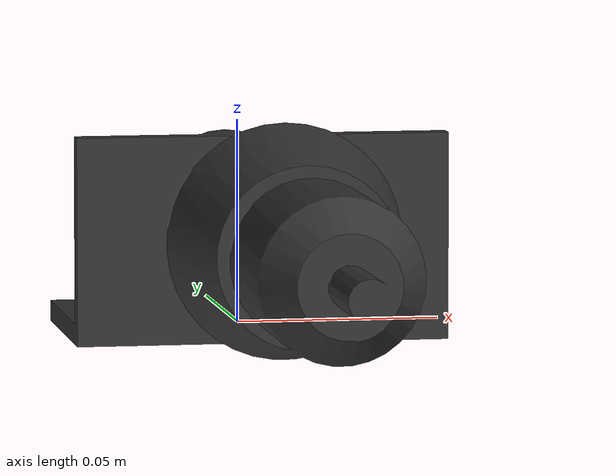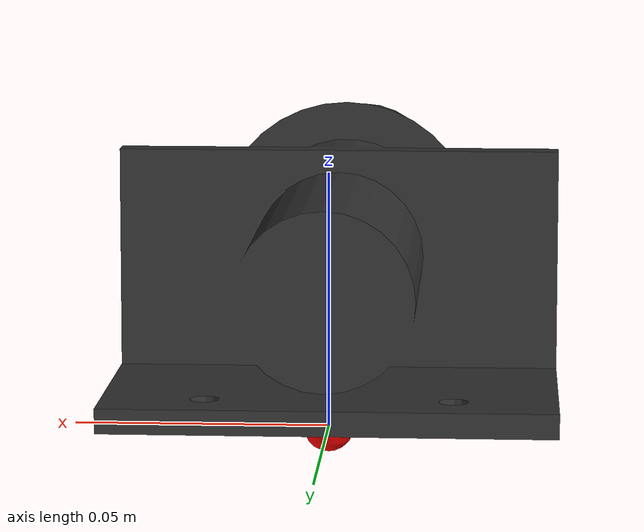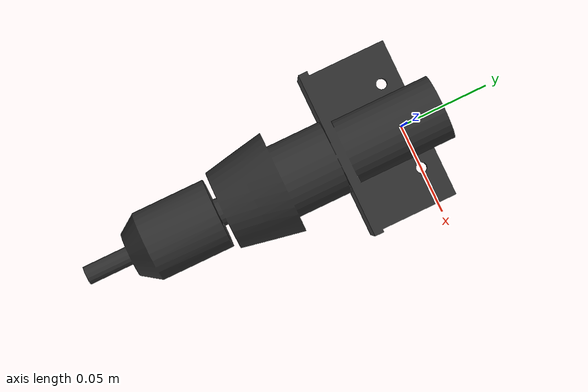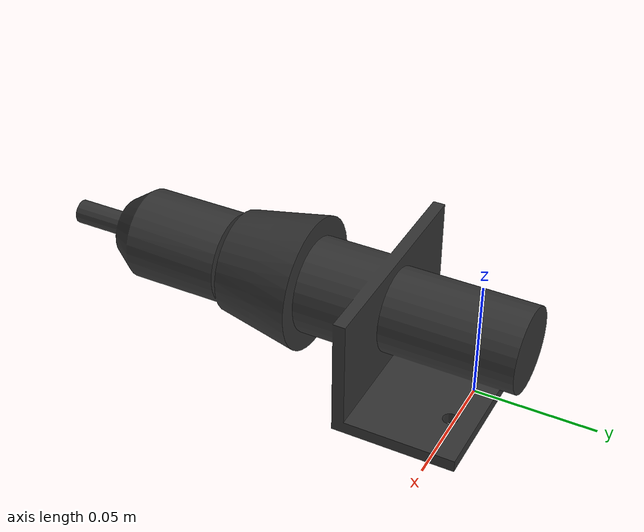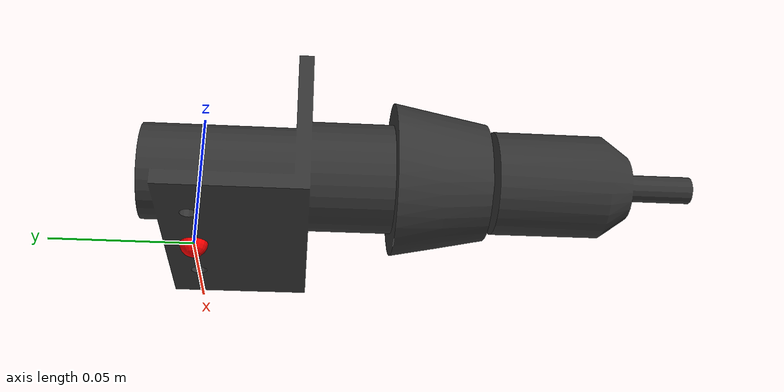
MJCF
<mujoco model="screwdriver_marco">
  <compiler angle="radian"/>
  <option timestep="0.01"/>

  <visual>
    <headlight diffuse="0.6 0.6 0.6" ambient="0.1 0.1 0.1" specular="0 0 0"/>
    <rgba haze="0.15 0.25 0.35 1"/>
    <global azimuth="120" elevation="-20"/>
  </visual>

  <asset>
    <mesh name="tool_mesh" file="screwdriver_marco.obj"/>
    <!-- Screwdriver collision mesh -->
    <mesh name="screwdriver_marco_collision_mesh" file="screwdriver_marco.obj"/>
  </asset>

  <default>
    <geom condim="3" friction="1 0.5 0.01" solref="0.02 1" solimp="0.9 0.95 0.001"/>
  </default>

  <worldbody>
    <body name="tool_top" pos="0 0 0">
      <inertial mass="0.752" pos="0 -0.070 0.028" diaginertia="0.0143 0.0143 0.0016"/>
      <geom type="mesh" mesh="tool_mesh" rgba="0.2 0.2 0.2 1" contype="0" conaffinity="0" group="0"/>
      <!-- collision cylinder -->
      <geom name="screwdriver_marco_collision"
                            type="mesh"
                            mesh="screwdriver_marco_collision_mesh"
                            pos="0 0 0.0"
                            rgba="0.7 0.1 0.1 0.3"
                            contype="1" conaffinity="1"
                            group="3" />
      <!-- Marker (red sphere) to specify the origin -->
      <site name="mount_site" pos="0 0 0" size="0.005" rgba="1 0 0 1"/>
      <!-- Marker (green sphere) to specify the point of application of the weight -->
      <geom type="sphere" size="0.005" pos="0 -0.070 0.028" rgba="0 1 0 1" contype="0" conaffinity="0" group="2"/>
    </body>
  </worldbody>
</mujoco>
